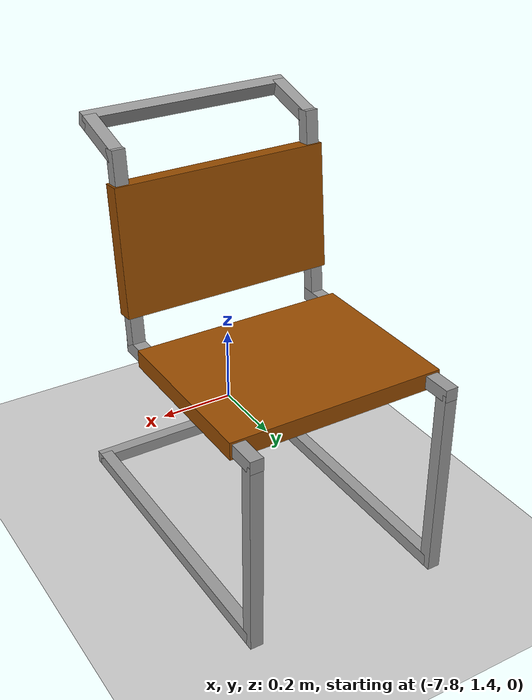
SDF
<sdf version="1.6">
 <world name="default">
  <model name="ground_plane">
   <static>1</static>
   <link name="link">
    <collision name="collision">
     <geometry><plane><normal>0 0 1</normal><size>100 100</size></plane></geometry>
     <surface><friction><ode><mu>100</mu><mu2>50</mu2></ode></friction></surface>
    </collision>
    <visual name="visual">
     <cast_shadows>0</cast_shadows>
     <geometry><plane><normal>0 0 1</normal><size>100 100</size></plane></geometry>
     <material>
      <script><uri>file://media/materials/scripts/gazebo.material</uri><name>Gazebo/Grey</name></script>
     </material>
    </visual>
   </link>
  </model>
  <model name="side_chair">
   <link name="link_3">
    <pose>0.475 0 0.46 0 -0 0</pose>
    <inertial>
     <mass>1</mass>
     <inertia>
      <ixx>0.166667</ixx>
      <ixy>0</ixy>
      <ixz>0</ixz>
      <iyy>0.166667</iyy>
      <iyz>0</iyz>
      <izz>0.166667</izz>
     </inertia>
    </inertial>
    <visual name="visual">
     <geometry><box><size>0.39 0.5 0.04</size></box></geometry>
     <material>
      <lighting>1</lighting>
      <script><uri>file://media/materials/scripts/gazebo.material</uri><name>Gazebo/Grey</name></script>
      <shader type="pixel"><normal_map>__default__</normal_map></shader>
      <ambient>0.6 0.3 0 1</ambient>
      <diffuse>0.7 0.7 0.7 1</diffuse>
      <specular>0.01 0.01 0.01 1</specular>
      <emissive>0 0 0 1</emissive>
     </material>
    </visual>
    <collision name="collision">
     <geometry><box><size>0.39 0.5 0.04</size></box></geometry>
     <surface>
      <friction>
       <ode><mu>1</mu><mu2>1</mu2><fdir1>0 0 0</fdir1><slip1>0</slip1><slip2>0</slip2></ode>
       <torsional>
        <coefficient>1</coefficient>
        <patch_radius>0</patch_radius>
        <surface_radius>0</surface_radius>
        <use_patch_radius>1</use_patch_radius>
        <ode><slip>0</slip></ode>
       </torsional>
      </friction>
      <bounce><restitution_coefficient>0</restitution_coefficient><threshold>1e+06</threshold></bounce>
      <contact>
       <collide_without_contact>0</collide_without_contact>
       <collide_without_contact_bitmask>1</collide_without_contact_bitmask>
       <collide_bitmask>1</collide_bitmask>
       <ode>
        <soft_cfm>0</soft_cfm>
        <soft_erp>0.2</soft_erp>
        <kp>1e+13</kp>
        <kd>1</kd>
        <max_vel>0.01</max_vel>
        <min_depth>0</min_depth>
       </ode>
       <bullet>
        <split_impulse>1</split_impulse>
        <split_impulse_penetration_threshold>-0.01</split_impulse_penetration_threshold>
        <soft_cfm>0</soft_cfm>
        <soft_erp>0.2</soft_erp>
        <kp>1e+13</kp>
        <kd>1</kd>
       </bullet>
      </contact>
     </surface>
    </collision>
   </link>
   <link name="link_3_clone">
    <pose>0.21 0 0.68 0 1.4739 0</pose>
    <inertial>
     <mass>0.748385</mass>
     <inertia>
      <ixx>0.0150301</ixx>
      <ixy>0</ixy>
      <ixz>0</ixz>
      <iyy>0.0053689</iyy>
      <iyz>0</iyz>
      <izz>0.0202867</izz>
     </inertia>
    </inertial>
    <visual name="visual">
     <geometry><box><size>0.29 0.5 0.04</size></box></geometry>
     <material>
      <lighting>1</lighting>
      <script><uri>file://media/materials/scripts/gazebo.material</uri><name>Gazebo/Grey</name></script>
      <shader type="pixel"><normal_map>__default__</normal_map></shader>
      <ambient>0.6 0.3 0 1</ambient>
      <diffuse>0.7 0.7 0.7 1</diffuse>
      <specular>0.01 0.01 0.01 1</specular>
      <emissive>0 0 0 1</emissive>
     </material>
    </visual>
    <collision name="collision">
     <geometry><box><size>0.29 0.5 0.04</size></box></geometry>
     <surface>
      <friction>
       <ode><mu>1</mu><mu2>1</mu2><fdir1>0 0 0</fdir1><slip1>0</slip1><slip2>0</slip2></ode>
       <torsional>
        <coefficient>1</coefficient>
        <patch_radius>0</patch_radius>
        <surface_radius>0</surface_radius>
        <use_patch_radius>1</use_patch_radius>
        <ode><slip>0</slip></ode>
       </torsional>
      </friction>
      <bounce><restitution_coefficient>0</restitution_coefficient><threshold>1e+06</threshold></bounce>
      <contact>
       <collide_without_contact>0</collide_without_contact>
       <collide_without_contact_bitmask>1</collide_without_contact_bitmask>
       <collide_bitmask>1</collide_bitmask>
       <ode>
        <soft_cfm>0</soft_cfm>
        <soft_erp>0.2</soft_erp>
        <kp>1e+13</kp>
        <kd>1</kd>
        <max_vel>0.01</max_vel>
        <min_depth>0</min_depth>
       </ode>
       <bullet>
        <split_impulse>1</split_impulse>
        <split_impulse_penetration_threshold>-0.01</split_impulse_penetration_threshold>
        <soft_cfm>0</soft_cfm>
        <soft_erp>0.2</soft_erp>
        <kp>1e+13</kp>
        <kd>1</kd>
       </bullet>
      </contact>
     </surface>
    </collision>
   </link>
   <link name="link_3_clone_0">
    <pose>0.475 -0.23 0.46 0 -0 0</pose>
    <inertial>
     <mass>1.33571</mass>
     <inertia>
      <ixx>0.00020036</ixx>
      <ixy>0</ixy>
      <ixz>0</ixz>
      <iyy>0.0303055</iyy>
      <iyz>0</iyz>
      <izz>0.0303055</izz>
     </inertia>
    </inertial>
    <visual name="visual">
     <geometry><box><size>0.520926 0.03 0.03</size></box></geometry>
     <material>
      <lighting>1</lighting>
      <script><uri>file://media/materials/scripts/gazebo.material</uri><name>Gazebo/Grey</name></script>
      <shader type="pixel"><normal_map>__default__</normal_map></shader>
      <ambient>0.75 0.75 0.75 1</ambient>
      <diffuse>0.7 0.7 0.7 1</diffuse>
      <specular>0.01 0.01 0.01 1</specular>
      <emissive>0 0 0 1</emissive>
     </material>
    </visual>
    <collision name="collision">
     <geometry><box><size>0.520926 0.03 0.03</size></box></geometry>
     <surface>
      <friction>
       <ode><mu>1</mu><mu2>1</mu2><fdir1>0 0 0</fdir1><slip1>0</slip1><slip2>0</slip2></ode>
       <torsional>
        <coefficient>1</coefficient>
        <patch_radius>0</patch_radius>
        <surface_radius>0</surface_radius>
        <use_patch_radius>1</use_patch_radius>
        <ode><slip>0</slip></ode>
       </torsional>
      </friction>
      <bounce><restitution_coefficient>0</restitution_coefficient><threshold>1e+06</threshold></bounce>
      <contact>
       <collide_without_contact>0</collide_without_contact>
       <collide_without_contact_bitmask>1</collide_without_contact_bitmask>
       <collide_bitmask>1</collide_bitmask>
       <ode>
        <soft_cfm>0</soft_cfm>
        <soft_erp>0.2</soft_erp>
        <kp>1e+13</kp>
        <kd>1</kd>
        <max_vel>0.01</max_vel>
        <min_depth>0</min_depth>
       </ode>
       <bullet>
        <split_impulse>1</split_impulse>
        <split_impulse_penetration_threshold>-0.01</split_impulse_penetration_threshold>
        <soft_cfm>0</soft_cfm>
        <soft_erp>0.2</soft_erp>
        <kp>1e+13</kp>
        <kd>1</kd>
       </bullet>
      </contact>
     </surface>
    </collision>
   </link>
   <link name="link_3_clone_0_clone">
    <pose>0.72 -0.23 0.23 0 -0 0</pose>
    <inertial>
     <mass>1.33571</mass>
     <inertia>
      <ixx>0.00020036</ixx>
      <ixy>0</ixy>
      <ixz>0</ixz>
      <iyy>0.0303055</iyy>
      <iyz>0</iyz>
      <izz>0.0303055</izz>
     </inertia>
    </inertial>
    <visual name="visual">
     <geometry><box><size>0.03 0.03 0.46</size></box></geometry>
     <material>
      <lighting>1</lighting>
      <script><uri>file://media/materials/scripts/gazebo.material</uri><name>Gazebo/Grey</name></script>
      <shader type="pixel"><normal_map>__default__</normal_map></shader>
      <ambient>0.75 0.75 0.75 1</ambient>
      <diffuse>0.7 0.7 0.7 1</diffuse>
      <specular>0.01 0.01 0.01 1</specular>
      <emissive>0 0 0 1</emissive>
     </material>
    </visual>
    <collision name="collision">
     <geometry><box><size>0.03 0.03 0.46</size></box></geometry>
     <surface>
      <friction>
       <ode><mu>1</mu><mu2>1</mu2><fdir1>0 0 0</fdir1><slip1>0</slip1><slip2>0</slip2></ode>
       <torsional>
        <coefficient>1</coefficient>
        <patch_radius>0</patch_radius>
        <surface_radius>0</surface_radius>
        <use_patch_radius>1</use_patch_radius>
        <ode><slip>0</slip></ode>
       </torsional>
      </friction>
      <bounce><restitution_coefficient>0</restitution_coefficient><threshold>1e+06</threshold></bounce>
      <contact>
       <collide_without_contact>0</collide_without_contact>
       <collide_without_contact_bitmask>1</collide_without_contact_bitmask>
       <collide_bitmask>1</collide_bitmask>
       <ode>
        <soft_cfm>0</soft_cfm>
        <soft_erp>0.2</soft_erp>
        <kp>1e+13</kp>
        <kd>1</kd>
        <max_vel>0.01</max_vel>
        <min_depth>0</min_depth>
       </ode>
       <bullet>
        <split_impulse>1</split_impulse>
        <split_impulse_penetration_threshold>-0.01</split_impulse_penetration_threshold>
        <soft_cfm>0</soft_cfm>
        <soft_erp>0.2</soft_erp>
        <kp>1e+13</kp>
        <kd>1</kd>
       </bullet>
      </contact>
     </surface>
    </collision>
   </link>
   <link name="link_3_clone_0_clone_0">
    <pose>0.36 -0.23 0.015 0 -0 0</pose>
    <inertial>
     <mass>1.84718</mass>
     <inertia>
      <ixx>0.00027708</ixx>
      <ixy>0</ixy>
      <ixz>0</ixz>
      <iyy>0.0800255</iyy>
      <iyz>0</iyz>
      <izz>0.0800255</izz>
     </inertia>
    </inertial>
    <visual name="visual">
     <geometry><box><size>0.7204 0.03 0.03</size></box></geometry>
     <material>
      <lighting>1</lighting>
      <script><uri>file://media/materials/scripts/gazebo.material</uri><name>Gazebo/Grey</name></script>
      <shader type="pixel"><normal_map>__default__</normal_map></shader>
      <ambient>0.75 0.75 0.75 1</ambient>
      <diffuse>0.7 0.7 0.7 1</diffuse>
      <specular>0.01 0.01 0.01 1</specular>
      <emissive>0 0 0 1</emissive>
     </material>
    </visual>
    <collision name="collision">
     <geometry><box><size>0.7204 0.03 0.03</size></box></geometry>
     <surface>
      <friction>
       <ode><mu>1</mu><mu2>1</mu2><fdir1>0 0 0</fdir1><slip1>0</slip1><slip2>0</slip2></ode>
       <torsional>
        <coefficient>1</coefficient>
        <patch_radius>0</patch_radius>
        <surface_radius>0</surface_radius>
        <use_patch_radius>1</use_patch_radius>
        <ode><slip>0</slip></ode>
       </torsional>
      </friction>
      <bounce><restitution_coefficient>0</restitution_coefficient><threshold>1e+06</threshold></bounce>
      <contact>
       <collide_without_contact>0</collide_without_contact>
       <collide_without_contact_bitmask>1</collide_without_contact_bitmask>
       <collide_bitmask>1</collide_bitmask>
       <ode>
        <soft_cfm>0</soft_cfm>
        <soft_erp>0.2</soft_erp>
        <kp>1e+13</kp>
        <kd>1</kd>
        <max_vel>0.01</max_vel>
        <min_depth>0</min_depth>
       </ode>
       <bullet>
        <split_impulse>1</split_impulse>
        <split_impulse_penetration_threshold>-0.01</split_impulse_penetration_threshold>
        <soft_cfm>0</soft_cfm>
        <soft_erp>0.2</soft_erp>
        <kp>1e+13</kp>
        <kd>1</kd>
       </bullet>
      </contact>
     </surface>
    </collision>
   </link>
   <link name="link_3_clone_0_clone_0_clone">
    <pose>0.13 -0.23 0.9 0 0.262585 0</pose>
    <inertial>
     <mass>0.359555</mass>
     <inertia>
      <ixx>5.393e-05</ixx>
      <ixy>0</ixy>
      <ixz>0</ixz>
      <iyy>0.00061614</iyy>
      <iyz>0</iyz>
      <izz>0.00061614</izz>
     </inertia>
    </inertial>
    <visual name="visual">
     <geometry><box><size>0.140226 0.03 0.03</size></box></geometry>
     <material>
      <lighting>1</lighting>
      <script><uri>file://media/materials/scripts/gazebo.material</uri><name>Gazebo/Grey</name></script>
      <shader type="pixel"><normal_map>__default__</normal_map></shader>
      <ambient>0.75 0.75 0.75 1</ambient>
      <diffuse>0.7 0.7 0.7 1</diffuse>
      <specular>0.01 0.01 0.01 1</specular>
      <emissive>0 0 0 1</emissive>
     </material>
    </visual>
    <collision name="collision">
     <geometry><box><size>0.140226 0.03 0.03</size></box></geometry>
     <surface>
      <friction>
       <ode><mu>1</mu><mu2>1</mu2><fdir1>0 0 0</fdir1><slip1>0</slip1><slip2>0</slip2></ode>
       <torsional>
        <coefficient>1</coefficient>
        <patch_radius>0</patch_radius>
        <surface_radius>0</surface_radius>
        <use_patch_radius>1</use_patch_radius>
        <ode><slip>0</slip></ode>
       </torsional>
      </friction>
      <bounce><restitution_coefficient>0</restitution_coefficient><threshold>1e+06</threshold></bounce>
      <contact>
       <collide_without_contact>0</collide_without_contact>
       <collide_without_contact_bitmask>1</collide_without_contact_bitmask>
       <collide_bitmask>1</collide_bitmask>
       <ode>
        <soft_cfm>0</soft_cfm>
        <soft_erp>0.2</soft_erp>
        <kp>1e+13</kp>
        <kd>1</kd>
        <max_vel>0.01</max_vel>
        <min_depth>0</min_depth>
       </ode>
       <bullet>
        <split_impulse>1</split_impulse>
        <split_impulse_penetration_threshold>-0.01</split_impulse_penetration_threshold>
        <soft_cfm>0</soft_cfm>
        <soft_erp>0.2</soft_erp>
        <kp>1e+13</kp>
        <kd>1</kd>
       </bullet>
      </contact>
     </surface>
    </collision>
   </link>
   <link name="link_3_clone_0_clone_0_clone_0">
    <pose>0.36 0.23 0.015 0 -0 0</pose>
    <inertial>
     <mass>1.84718</mass>
     <inertia>
      <ixx>0.00027708</ixx>
      <ixy>0</ixy>
      <ixz>0</ixz>
      <iyy>0.0800255</iyy>
      <iyz>0</iyz>
      <izz>0.0800255</izz>
     </inertia>
    </inertial>
    <visual name="visual">
     <geometry><box><size>0.7204 0.03 0.03</size></box></geometry>
     <material>
      <lighting>1</lighting>
      <script><uri>file://media/materials/scripts/gazebo.material</uri><name>Gazebo/Grey</name></script>
      <shader type="pixel"><normal_map>__default__</normal_map></shader>
      <ambient>0.75 0.75 0.75 1</ambient>
      <diffuse>0.7 0.7 0.7 1</diffuse>
      <specular>0.01 0.01 0.01 1</specular>
      <emissive>0 0 0 1</emissive>
     </material>
    </visual>
    <collision name="collision">
     <geometry><box><size>0.7204 0.03 0.03</size></box></geometry>
     <surface>
      <friction>
       <ode><mu>1</mu><mu2>1</mu2><fdir1>0 0 0</fdir1><slip1>0</slip1><slip2>0</slip2></ode>
       <torsional>
        <coefficient>1</coefficient>
        <patch_radius>0</patch_radius>
        <surface_radius>0</surface_radius>
        <use_patch_radius>1</use_patch_radius>
        <ode><slip>0</slip></ode>
       </torsional>
      </friction>
      <bounce><restitution_coefficient>0</restitution_coefficient><threshold>1e+06</threshold></bounce>
      <contact>
       <collide_without_contact>0</collide_without_contact>
       <collide_without_contact_bitmask>1</collide_without_contact_bitmask>
       <collide_bitmask>1</collide_bitmask>
       <ode>
        <soft_cfm>0</soft_cfm>
        <soft_erp>0.2</soft_erp>
        <kp>1e+13</kp>
        <kd>1</kd>
        <max_vel>0.01</max_vel>
        <min_depth>0</min_depth>
       </ode>
       <bullet>
        <split_impulse>1</split_impulse>
        <split_impulse_penetration_threshold>-0.01</split_impulse_penetration_threshold>
        <soft_cfm>0</soft_cfm>
        <soft_erp>0.2</soft_erp>
        <kp>1e+13</kp>
        <kd>1</kd>
       </bullet>
      </contact>
     </surface>
    </collision>
   </link>
   <link name="link_3_clone_0_clone_0_clone_clone">
    <pose>0.13 0.23 0.9 0 0.262585 0</pose>
    <inertial>
     <mass>0.359555</mass>
     <inertia>
      <ixx>5.393e-05</ixx>
      <ixy>0</ixy>
      <ixz>0</ixz>
      <iyy>0.00061614</iyy>
      <iyz>0</iyz>
      <izz>0.00061614</izz>
     </inertia>
    </inertial>
    <visual name="visual">
     <geometry><box><size>0.140226 0.03 0.03</size></box></geometry>
     <material>
      <lighting>1</lighting>
      <script><uri>file://media/materials/scripts/gazebo.material</uri><name>Gazebo/Grey</name></script>
      <shader type="pixel"><normal_map>__default__</normal_map></shader>
      <ambient>0.75 0.75 0.75 1</ambient>
      <diffuse>0.7 0.7 0.7 1</diffuse>
      <specular>0.01 0.01 0.01 1</specular>
      <emissive>0 0 0 1</emissive>
     </material>
    </visual>
    <collision name="collision">
     <geometry><box><size>0.140226 0.03 0.03</size></box></geometry>
     <surface>
      <friction>
       <ode><mu>1</mu><mu2>1</mu2><fdir1>0 0 0</fdir1><slip1>0</slip1><slip2>0</slip2></ode>
       <torsional>
        <coefficient>1</coefficient>
        <patch_radius>0</patch_radius>
        <surface_radius>0</surface_radius>
        <use_patch_radius>1</use_patch_radius>
        <ode><slip>0</slip></ode>
       </torsional>
      </friction>
      <bounce><restitution_coefficient>0</restitution_coefficient><threshold>1e+06</threshold></bounce>
      <contact>
       <collide_without_contact>0</collide_without_contact>
       <collide_without_contact_bitmask>1</collide_without_contact_bitmask>
       <collide_bitmask>1</collide_bitmask>
       <ode>
        <soft_cfm>0</soft_cfm>
        <soft_erp>0.2</soft_erp>
        <kp>1e+13</kp>
        <kd>1</kd>
        <max_vel>0.01</max_vel>
        <min_depth>0</min_depth>
       </ode>
       <bullet>
        <split_impulse>1</split_impulse>
        <split_impulse_penetration_threshold>-0.01</split_impulse_penetration_threshold>
        <soft_cfm>0</soft_cfm>
        <soft_erp>0.2</soft_erp>
        <kp>1e+13</kp>
        <kd>1</kd>
       </bullet>
      </contact>
     </surface>
    </collision>
   </link>
   <link name="link_3_clone_0_clone_1">
    <pose>0.475 0.23 0.46 0 -0 0</pose>
    <inertial>
     <mass>1.33571</mass>
     <inertia>
      <ixx>0.00020036</ixx>
      <ixy>0</ixy>
      <ixz>0</ixz>
      <iyy>0.0303055</iyy>
      <iyz>0</iyz>
      <izz>0.0303055</izz>
     </inertia>
    </inertial>
    <visual name="visual">
     <geometry><box><size>0.520926 0.03 0.03</size></box></geometry>
     <material>
      <lighting>1</lighting>
      <script><uri>file://media/materials/scripts/gazebo.material</uri><name>Gazebo/Grey</name></script>
      <shader type="pixel"><normal_map>__default__</normal_map></shader>
      <ambient>0.75 0.75 0.75 1</ambient>
      <diffuse>0.7 0.7 0.7 1</diffuse>
      <specular>0.01 0.01 0.01 1</specular>
      <emissive>0 0 0 1</emissive>
     </material>
    </visual>
    <collision name="collision">
     <geometry><box><size>0.520926 0.03 0.03</size></box></geometry>
     <surface>
      <friction>
       <ode><mu>1</mu><mu2>1</mu2><fdir1>0 0 0</fdir1><slip1>0</slip1><slip2>0</slip2></ode>
       <torsional>
        <coefficient>1</coefficient>
        <patch_radius>0</patch_radius>
        <surface_radius>0</surface_radius>
        <use_patch_radius>1</use_patch_radius>
        <ode><slip>0</slip></ode>
       </torsional>
      </friction>
      <bounce><restitution_coefficient>0</restitution_coefficient><threshold>1e+06</threshold></bounce>
      <contact>
       <collide_without_contact>0</collide_without_contact>
       <collide_without_contact_bitmask>1</collide_without_contact_bitmask>
       <collide_bitmask>1</collide_bitmask>
       <ode>
        <soft_cfm>0</soft_cfm>
        <soft_erp>0.2</soft_erp>
        <kp>1e+13</kp>
        <kd>1</kd>
        <max_vel>0.01</max_vel>
        <min_depth>0</min_depth>
       </ode>
       <bullet>
        <split_impulse>1</split_impulse>
        <split_impulse_penetration_threshold>-0.01</split_impulse_penetration_threshold>
        <soft_cfm>0</soft_cfm>
        <soft_erp>0.2</soft_erp>
        <kp>1e+13</kp>
        <kd>1</kd>
       </bullet>
      </contact>
     </surface>
    </collision>
   </link>
   <link name="link_3_clone_0_clone_clone">
    <pose>0.72 0.23 0.23 0 -0 0</pose>
    <inertial>
     <mass>1.33571</mass>
     <inertia>
      <ixx>0.00020036</ixx>
      <ixy>0</ixy>
      <ixz>0</ixz>
      <iyy>0.0303055</iyy>
      <iyz>0</iyz>
      <izz>0.0303055</izz>
     </inertia>
    </inertial>
    <visual name="visual">
     <geometry><box><size>0.03 0.03 0.46</size></box></geometry>
     <material>
      <lighting>1</lighting>
      <script><uri>file://media/materials/scripts/gazebo.material</uri><name>Gazebo/Grey</name></script>
      <shader type="pixel"><normal_map>__default__</normal_map></shader>
      <ambient>0.75 0.75 0.75 1</ambient>
      <diffuse>0.7 0.7 0.7 1</diffuse>
      <specular>0.01 0.01 0.01 1</specular>
      <emissive>0 0 0 1</emissive>
     </material>
    </visual>
    <collision name="collision">
     <geometry><box><size>0.03 0.03 0.46</size></box></geometry>
     <surface>
      <friction>
       <ode><mu>1</mu><mu2>1</mu2><fdir1>0 0 0</fdir1><slip1>0</slip1><slip2>0</slip2></ode>
       <torsional>
        <coefficient>1</coefficient>
        <patch_radius>0</patch_radius>
        <surface_radius>0</surface_radius>
        <use_patch_radius>1</use_patch_radius>
        <ode><slip>0</slip></ode>
       </torsional>
      </friction>
      <bounce><restitution_coefficient>0</restitution_coefficient><threshold>1e+06</threshold></bounce>
      <contact>
       <collide_without_contact>0</collide_without_contact>
       <collide_without_contact_bitmask>1</collide_without_contact_bitmask>
       <collide_bitmask>1</collide_bitmask>
       <ode>
        <soft_cfm>0</soft_cfm>
        <soft_erp>0.2</soft_erp>
        <kp>1e+13</kp>
        <kd>1</kd>
        <max_vel>0.01</max_vel>
        <min_depth>0</min_depth>
       </ode>
       <bullet>
        <split_impulse>1</split_impulse>
        <split_impulse_penetration_threshold>-0.01</split_impulse_penetration_threshold>
        <soft_cfm>0</soft_cfm>
        <soft_erp>0.2</soft_erp>
        <kp>1e+13</kp>
        <kd>1</kd>
       </bullet>
      </contact>
     </surface>
    </collision>
   </link>
   <link name="link_3_clone_clone">
    <pose>0.21 -0.23 0.68 0 1.4739 0</pose>
    <inertial>
     <mass>1.13912</mass>
     <inertia>
      <ixx>0.00017087</ixx>
      <ixy>0</ixy>
      <ixz>0</ixz>
      <iyy>0.0188203</iyy>
      <iyz>0</iyz>
      <izz>0.0188203</izz>
     </inertia>
    </inertial>
    <visual name="visual">
     <geometry><box><size>0.44 0.03 0.03</size></box></geometry>
     <material>
      <lighting>1</lighting>
      <script><uri>file://media/materials/scripts/gazebo.material</uri><name>Gazebo/Grey</name></script>
      <shader type="pixel"><normal_map>__default__</normal_map></shader>
      <ambient>0.75 0.75 0.75 1</ambient>
      <diffuse>0.7 0.7 0.7 1</diffuse>
      <specular>0.01 0.01 0.01 1</specular>
      <emissive>0 0 0 1</emissive>
     </material>
    </visual>
    <collision name="collision">
     <geometry><box><size>0.444254 0.03 0.03</size></box></geometry>
     <surface>
      <friction>
       <ode><mu>1</mu><mu2>1</mu2><fdir1>0 0 0</fdir1><slip1>0</slip1><slip2>0</slip2></ode>
       <torsional>
        <coefficient>1</coefficient>
        <patch_radius>0</patch_radius>
        <surface_radius>0</surface_radius>
        <use_patch_radius>1</use_patch_radius>
        <ode><slip>0</slip></ode>
       </torsional>
      </friction>
      <bounce><restitution_coefficient>0</restitution_coefficient><threshold>1e+06</threshold></bounce>
      <contact>
       <collide_without_contact>0</collide_without_contact>
       <collide_without_contact_bitmask>1</collide_without_contact_bitmask>
       <collide_bitmask>1</collide_bitmask>
       <ode>
        <soft_cfm>0</soft_cfm>
        <soft_erp>0.2</soft_erp>
        <kp>1e+13</kp>
        <kd>1</kd>
        <max_vel>0.01</max_vel>
        <min_depth>0</min_depth>
       </ode>
       <bullet>
        <split_impulse>1</split_impulse>
        <split_impulse_penetration_threshold>-0.01</split_impulse_penetration_threshold>
        <soft_cfm>0</soft_cfm>
        <soft_erp>0.2</soft_erp>
        <kp>1e+13</kp>
        <kd>1</kd>
       </bullet>
      </contact>
     </surface>
    </collision>
   </link>
   <link name="link_3_clone_clone_clone">
    <pose>0.21 0.23 0.68 0 1.4739 0</pose>
    <inertial>
     <mass>1.13912</mass>
     <inertia>
      <ixx>0.00017087</ixx>
      <ixy>0</ixy>
      <ixz>0</ixz>
      <iyy>0.0188203</iyy>
      <iyz>0</iyz>
      <izz>0.0188203</izz>
     </inertia>
    </inertial>
    <visual name="visual">
     <geometry><box><size>0.44 0.03 0.03</size></box></geometry>
     <material>
      <lighting>1</lighting>
      <script><uri>file://media/materials/scripts/gazebo.material</uri><name>Gazebo/Grey</name></script>
      <shader type="pixel"><normal_map>__default__</normal_map></shader>
      <ambient>0.75 0.75 0.75 1</ambient>
      <diffuse>0.7 0.7 0.7 1</diffuse>
      <specular>0.01 0.01 0.01 1</specular>
      <emissive>0 0 0 1</emissive>
     </material>
    </visual>
    <collision name="collision">
     <geometry><box><size>0.444254 0.03 0.03</size></box></geometry>
     <surface>
      <friction>
       <ode><mu>1</mu><mu2>1</mu2><fdir1>0 0 0</fdir1><slip1>0</slip1><slip2>0</slip2></ode>
       <torsional>
        <coefficient>1</coefficient>
        <patch_radius>0</patch_radius>
        <surface_radius>0</surface_radius>
        <use_patch_radius>1</use_patch_radius>
        <ode><slip>0</slip></ode>
       </torsional>
      </friction>
      <bounce><restitution_coefficient>0</restitution_coefficient><threshold>1e+06</threshold></bounce>
      <contact>
       <collide_without_contact>0</collide_without_contact>
       <collide_without_contact_bitmask>1</collide_without_contact_bitmask>
       <collide_bitmask>1</collide_bitmask>
       <ode>
        <soft_cfm>0</soft_cfm>
        <soft_erp>0.2</soft_erp>
        <kp>1e+13</kp>
        <kd>1</kd>
        <max_vel>0.01</max_vel>
        <min_depth>0</min_depth>
       </ode>
       <bullet>
        <split_impulse>1</split_impulse>
        <split_impulse_penetration_threshold>-0.01</split_impulse_penetration_threshold>
        <soft_cfm>0</soft_cfm>
        <soft_erp>0.2</soft_erp>
        <kp>1e+13</kp>
        <kd>1</kd>
       </bullet>
      </contact>
     </surface>
    </collision>
   </link>
   <link name="link_4">
    <pose>0 0 0.015 0 -0 0</pose>
    <inertial>
     <mass>1.05988</mass>
     <inertia>
      <ixx>0.0239014</ixx>
      <ixy>0</ixy>
      <ixz>0</ixz>
      <iyy>0.00015898</iyy>
      <iyz>0</iyz>
      <izz>0.0239014</izz>
     </inertia>
    </inertial>
    <visual name="visual">
     <geometry><box><size>0.03 0.49 0.03</size></box></geometry>
     <material>
      <lighting>1</lighting>
      <script><uri>file://media/materials/scripts/gazebo.material</uri><name>Gazebo/Grey</name></script>
      <shader type="pixel"><normal_map>__default__</normal_map></shader>
      <ambient>0.75 0.75 0.75 1</ambient>
      <diffuse>0.7 0.7 0.7 1</diffuse>
      <specular>0.01 0.01 0.01 1</specular>
      <emissive>0 0 0 1</emissive>
     </material>
    </visual>
    <collision name="collision">
     <geometry><box><size>0.03 0.49 0.03</size></box></geometry>
     <surface>
      <friction>
       <ode><mu>1</mu><mu2>1</mu2><fdir1>0 0 0</fdir1><slip1>0</slip1><slip2>0</slip2></ode>
       <torsional>
        <coefficient>1</coefficient>
        <patch_radius>0</patch_radius>
        <surface_radius>0</surface_radius>
        <use_patch_radius>1</use_patch_radius>
        <ode><slip>0</slip></ode>
       </torsional>
      </friction>
      <bounce><restitution_coefficient>0</restitution_coefficient><threshold>1e+06</threshold></bounce>
      <contact>
       <collide_without_contact>0</collide_without_contact>
       <collide_without_contact_bitmask>1</collide_without_contact_bitmask>
       <collide_bitmask>1</collide_bitmask>
       <ode>
        <soft_cfm>0</soft_cfm>
        <soft_erp>0.2</soft_erp>
        <kp>1e+13</kp>
        <kd>1</kd>
        <max_vel>0.01</max_vel>
        <min_depth>0</min_depth>
       </ode>
       <bullet>
        <split_impulse>1</split_impulse>
        <split_impulse_penetration_threshold>-0.01</split_impulse_penetration_threshold>
        <soft_cfm>0</soft_cfm>
        <soft_erp>0.2</soft_erp>
        <kp>1e+13</kp>
        <kd>1</kd>
       </bullet>
      </contact>
     </surface>
    </collision>
   </link>
   <link name="link_4_clone">
    <pose>0.061734 0 0.918349 0 0.262585 0</pose>
    <inertial>
     <mass>1.05988</mass>
     <inertia>
      <ixx>0.0239014</ixx>
      <ixy>0</ixy>
      <ixz>0</ixz>
      <iyy>0.00015898</iyy>
      <iyz>0</iyz>
      <izz>0.0239014</izz>
     </inertia>
    </inertial>
    <visual name="visual">
     <geometry><box><size>0.03 0.49 0.03</size></box></geometry>
     <material>
      <lighting>1</lighting>
      <script><uri>file://media/materials/scripts/gazebo.material</uri><name>Gazebo/Grey</name></script>
      <shader type="pixel"><normal_map>__default__</normal_map></shader>
      <ambient>0.75 0.75 0.75 1</ambient>
      <diffuse>0.7 0.7 0.7 1</diffuse>
      <specular>0.01 0.01 0.01 1</specular>
      <emissive>0 0 0 1</emissive>
     </material>
    </visual>
    <collision name="collision">
     <geometry><box><size>0.03 0.49 0.03</size></box></geometry>
     <surface>
      <friction>
       <ode><mu>1</mu><mu2>1</mu2><fdir1>0 0 0</fdir1><slip1>0</slip1><slip2>0</slip2></ode>
       <torsional>
        <coefficient>1</coefficient>
        <patch_radius>0</patch_radius>
        <surface_radius>0</surface_radius>
        <use_patch_radius>1</use_patch_radius>
        <ode><slip>0</slip></ode>
       </torsional>
      </friction>
      <bounce><restitution_coefficient>0</restitution_coefficient><threshold>1e+06</threshold></bounce>
      <contact>
       <collide_without_contact>0</collide_without_contact>
       <collide_without_contact_bitmask>1</collide_without_contact_bitmask>
       <collide_bitmask>1</collide_bitmask>
       <ode>
        <soft_cfm>0</soft_cfm>
        <soft_erp>0.2</soft_erp>
        <kp>1e+13</kp>
        <kd>1</kd>
        <max_vel>0.01</max_vel>
        <min_depth>0</min_depth>
       </ode>
       <bullet>
        <split_impulse>1</split_impulse>
        <split_impulse_penetration_threshold>-0.01</split_impulse_penetration_threshold>
        <soft_cfm>0</soft_cfm>
        <soft_erp>0.2</soft_erp>
        <kp>1e+13</kp>
        <kd>1</kd>
       </bullet>
      </contact>
     </surface>
    </collision>
   </link>
   <joint name="link_3_clone_0_JOINT_10" type="fixed">
    <parent>link_3_clone_0</parent>
    <child>link_3</child>
    <physics>
     <ode><limit><cfm>0</cfm><erp>0.2</erp></limit><suspension><cfm>0</cfm><erp>0.2</erp></suspension></ode>
    </physics>
   </joint>
   <joint name="link_3_clone_0_JOINT_6" type="fixed">
    <parent>link_3_clone_0</parent>
    <child>link_3_clone_clone</child>
    <physics>
     <ode><limit><cfm>0</cfm><erp>0.2</erp></limit><suspension><cfm>0</cfm><erp>0.2</erp></suspension></ode>
    </physics>
   </joint>
   <joint name="link_3_clone_0_clone_0_JOINT_4" type="fixed">
    <parent>link_3_clone_0_clone_0</parent>
    <child>link_3_clone_0_clone</child>
    <physics>
     <ode><limit><cfm>0</cfm><erp>0.2</erp></limit><suspension><cfm>0</cfm><erp>0.2</erp></suspension></ode>
    </physics>
   </joint>
   <joint name="link_3_clone_0_clone_0_clone_0_JOINT_11" type="fixed">
    <parent>link_3_clone_0_clone_0_clone_0</parent>
    <child>link_3_clone_0_clone_clone</child>
    <physics>
     <ode><limit><cfm>0</cfm><erp>0.2</erp></limit><suspension><cfm>0</cfm><erp>0.2</erp></suspension></ode>
    </physics>
   </joint>
   <joint name="link_3_clone_0_clone_0_clone_JOINT_8" type="fixed">
    <parent>link_3_clone_0_clone_0_clone</parent>
    <child>link_4_clone</child>
    <physics>
     <ode><limit><cfm>0</cfm><erp>0.2</erp></limit><suspension><cfm>0</cfm><erp>0.2</erp></suspension></ode>
    </physics>
   </joint>
   <joint name="link_3_clone_0_clone_0_clone_clone_JOINT_15" type="fixed">
    <parent>link_3_clone_0_clone_0_clone_clone</parent>
    <child>link_4_clone</child>
    <physics>
     <ode><limit><cfm>0</cfm><erp>0.2</erp></limit><suspension><cfm>0</cfm><erp>0.2</erp></suspension></ode>
    </physics>
   </joint>
   <joint name="link_3_clone_0_clone_1_JOINT_13" type="fixed">
    <parent>link_3_clone_0_clone_1</parent>
    <child>link_3_clone_clone_clone</child>
    <physics>
     <ode><limit><cfm>0</cfm><erp>0.2</erp></limit><suspension><cfm>0</cfm><erp>0.2</erp></suspension></ode>
    </physics>
   </joint>
   <joint name="link_3_clone_0_clone_1_JOINT_17" type="fixed">
    <parent>link_3_clone_0_clone_1</parent>
    <child>link_3</child>
    <physics>
     <ode><limit><cfm>0</cfm><erp>0.2</erp></limit><suspension><cfm>0</cfm><erp>0.2</erp></suspension></ode>
    </physics>
   </joint>
   <joint name="link_3_clone_0_clone_JOINT_5" type="fixed">
    <parent>link_3_clone_0_clone</parent>
    <child>link_3_clone_0</child>
    <physics>
     <ode><limit><cfm>0</cfm><erp>0.2</erp></limit><suspension><cfm>0</cfm><erp>0.2</erp></suspension></ode>
    </physics>
   </joint>
   <joint name="link_3_clone_0_clone_clone_JOINT_12" type="fixed">
    <parent>link_3_clone_0_clone_clone</parent>
    <child>link_3_clone_0_clone_1</child>
    <physics>
     <ode><limit><cfm>0</cfm><erp>0.2</erp></limit><suspension><cfm>0</cfm><erp>0.2</erp></suspension></ode>
    </physics>
   </joint>
   <joint name="link_3_clone_clone_JOINT_7" type="fixed">
    <parent>link_3_clone_clone</parent>
    <child>link_3_clone_0_clone_0_clone</child>
    <physics>
     <ode><limit><cfm>0</cfm><erp>0.2</erp></limit><suspension><cfm>0</cfm><erp>0.2</erp></suspension></ode>
    </physics>
   </joint>
   <joint name="link_3_clone_clone_JOINT_9" type="fixed">
    <parent>link_3_clone_clone</parent>
    <child>link_3_clone</child>
    <physics>
     <ode><limit><cfm>0</cfm><erp>0.2</erp></limit><suspension><cfm>0</cfm><erp>0.2</erp></suspension></ode>
    </physics>
   </joint>
   <joint name="link_3_clone_clone_clone_JOINT_14" type="fixed">
    <parent>link_3_clone_clone_clone</parent>
    <child>link_3_clone_0_clone_0_clone_clone</child>
    <physics>
     <ode><limit><cfm>0</cfm><erp>0.2</erp></limit><suspension><cfm>0</cfm><erp>0.2</erp></suspension></ode>
    </physics>
   </joint>
   <joint name="link_3_clone_clone_clone_JOINT_16" type="fixed">
    <parent>link_3_clone_clone_clone</parent>
    <child>link_3_clone</child>
    <physics>
     <ode><limit><cfm>0</cfm><erp>0.2</erp></limit><suspension><cfm>0</cfm><erp>0.2</erp></suspension></ode>
    </physics>
   </joint>
   <joint name="link_4_JOINT_2" type="fixed">
    <parent>link_4</parent>
    <child>link_3_clone_0_clone_0_clone_0</child>
    <physics>
     <ode><limit><cfm>0</cfm><erp>0.2</erp></limit><suspension><cfm>0</cfm><erp>0.2</erp></suspension></ode>
    </physics>
   </joint>
   <joint name="link_4_JOINT_3" type="fixed">
    <parent>link_4</parent>
    <child>link_3_clone_0_clone_0</child>
    <physics>
     <ode><limit><cfm>0</cfm><erp>0.2</erp></limit><suspension><cfm>0</cfm><erp>0.2</erp></suspension></ode>
    </physics>
   </joint>
   <static>0</static>
   <pose>-7.61459 1.50484 -2.9e-05 -2e-06 -3.2e-05 1.57071</pose>
  </model>
 </world>
</sdf>
